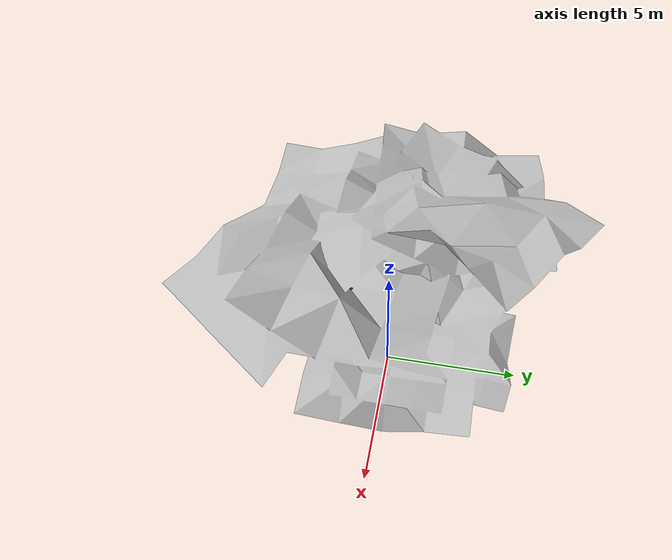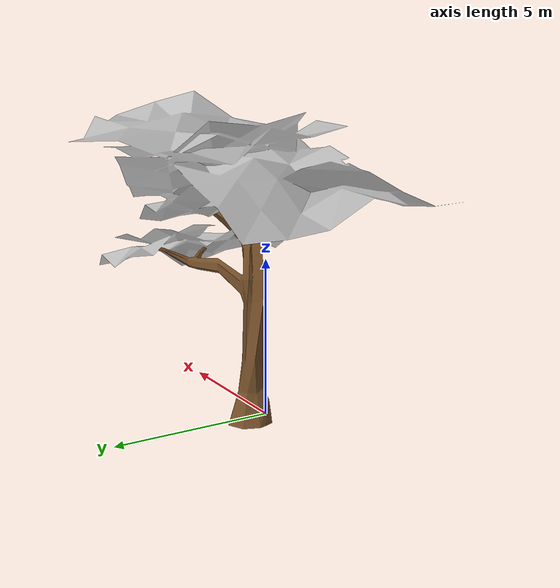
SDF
<?xml version="1.0" ?>
<sdf version="1.4">
  <model name="iai_broad_leaved_tree">
    <static>true</static>
    <link name="iai_tree_trunk">
      <collision name="collision">
	<geometry>
            <mesh>
	      <uri>model://broad_leaved_tree/broad_leaved_tree_trunk.stl</uri>
	      <scale>1 1 1</scale>
	    </mesh>
          </geometry>
      </collision>
      <visual name="visual">
        <cast_shadows>false</cast_shadows>

	<geometry>
            <mesh>
	      <uri>model://broad_leaved_tree/broad_leaved_tree_trunk.dae</uri>
	      <scale>1 1 1</scale>
	    </mesh>
          </geometry>

        <material>
          <script>
            <uri>file://Media/materials/scripts/iai-rescue.material</uri>
	     <name>IAI/Trunk</name>
          </script>
        </material>
      </visual>
    </link>
    <link name="iai_tree_branches">
      <collision name="collision">
	<geometry>
            <mesh>
	      <uri>model://broad_leaved_tree/broad_leaved_tree_leaves.stl</uri>
	      <scale>1 1 1</scale>
	    </mesh>
          </geometry>
      </collision>
      <visual name="visual">
        <cast_shadows>false</cast_shadows>

	<geometry>
            <mesh>
	      <uri>model://broad_leaved_tree/broad_leaved_tree_leaves.dae</uri>
	      <scale>1 1 1</scale>
	    </mesh>
          </geometry>

        <material>
          <script>
            <uri>file://Media/materials/scripts/iai-rescue.material</uri>
	     <name>IAI/TreeLeaves</name>
          </script>
        </material>
      </visual>
    </link>
    <joint name="j_tree" type="fixed">
      <parent>iai_tree_trunk</parent>
      <child>iai_tree_branches</child>

    </joint>
  </model>
</sdf>
